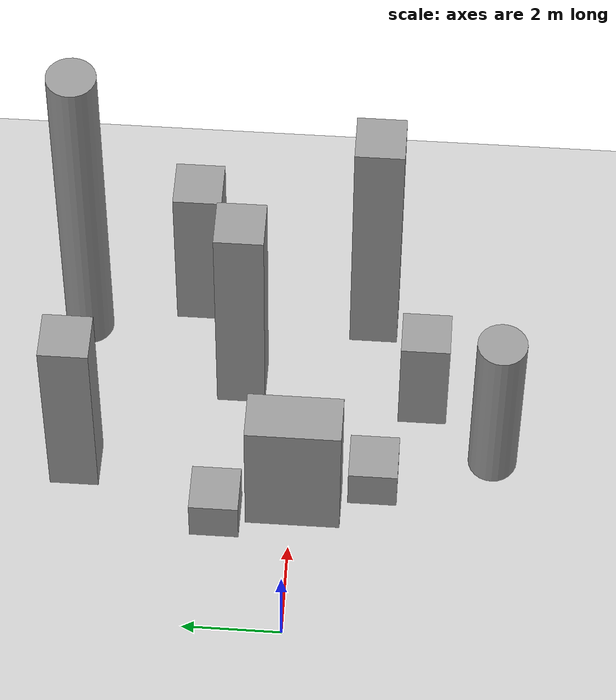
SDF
<sdf version="1.6">
 <world name="default">
  <light name="sun" type="directional">
   <pose>0 0 10 0 -0 0</pose>
   <diffuse>0.8 0.8 0.8 1</diffuse>
   <specular>0.2 0.2 0.2 1</specular>
   <attenuation>
    <range>1000</range>
    <constant>0.9</constant>
    <linear>0.01</linear>
    <quadratic>0.001</quadratic>
   </attenuation>
   <direction>-0.5 0.1 -0.9</direction>
  </light>
  <model name="ground_plane">
   <static>1</static>
   <link name="link">
    <collision name="collision">
     <geometry><plane><normal>0 0 1</normal><size>100 100</size></plane></geometry>
     <surface><friction><ode><mu>100</mu><mu2>50</mu2></ode></friction></surface>
    </collision>
    <visual name="visual">
     <cast_shadows>0</cast_shadows>
     <geometry><plane><normal>0 0 1</normal><size>100 100</size></plane></geometry>
     <material>
      <script><uri>file://media/materials/scripts/gazebo.material</uri><name>Gazebo/Grey</name></script>
     </material>
    </visual>
   </link>
  </model>
  <gravity>0 0 -9.8</gravity>
  <magnetic_field>6e-06 2.3e-05 -4.2e-05</magnetic_field>
  <atmosphere type="adiabatic"/>
  <physics name="default_physics" default="0" type="ode">
   <max_step_size>0.001</max_step_size>
   <real_time_factor>1</real_time_factor>
   <real_time_update_rate>1000</real_time_update_rate>
  </physics>
  <scene><ambient>0.4 0.4 0.4 1</ambient><background>0.7 0.7 0.7 1</background><shadows>1</shadows></scene>
  <spherical_coordinates>
   <surface_model>EARTH_WGS84</surface_model>
   <latitude_deg>0</latitude_deg>
   <longitude_deg>0</longitude_deg>
   <elevation>0</elevation>
   <heading_deg>0</heading_deg>
  </spherical_coordinates>
  <model name="unit_box">
   <pose>3.04685 -0.045624 1.57784 0 0 -0.000107</pose>
   <link name="link">
    <inertial>
     <mass>1</mass>
     <inertia>
      <ixx>0.166667</ixx>
      <ixy>0</ixy>
      <ixz>0</ixz>
      <iyy>0.166667</iyy>
      <iyz>0</iyz>
      <izz>0.166667</izz>
     </inertia>
    </inertial>
    <collision name="collision"><geometry><box><size>1 1.92006 3.15568</size></box></geometry></collision>
    <visual name="visual">
     <geometry><box><size>1 1.92006 3.15568</size></box></geometry>
     <material>
      <script><name>Gazebo/Grey</name><uri>file://media/materials/scripts/gazebo.material</uri></script>
     </material>
    </visual>
   </link>
  </model>
  <model name="unit_box_0">
   <pose>2.68044 1.52869 0.5 0 -0 0</pose>
   <link name="link">
    <inertial>
     <mass>1</mass>
     <inertia>
      <ixx>0.166667</ixx>
      <ixy>0</ixy>
      <ixz>0</ixz>
      <iyy>0.166667</iyy>
      <iyz>0</iyz>
      <izz>0.166667</izz>
     </inertia>
    </inertial>
    <collision name="collision"><geometry><box><size>1 1 1</size></box></geometry></collision>
    <visual name="visual">
     <geometry><box><size>1 1 1</size></box></geometry>
     <material>
      <script><name>Gazebo/Grey</name><uri>file://media/materials/scripts/gazebo.material</uri></script>
     </material>
    </visual>
   </link>
  </model>
  <model name="unit_box_1">
   <pose>3.66565 -1.63738 0.5 0 -0 0</pose>
   <link name="link">
    <inertial>
     <mass>1</mass>
     <inertia>
      <ixx>0.166667</ixx>
      <ixy>0</ixy>
      <ixz>0</ixz>
      <iyy>0.166667</iyy>
      <iyz>0</iyz>
      <izz>0.166667</izz>
     </inertia>
    </inertial>
    <collision name="collision"><geometry><box><size>1 1 1</size></box></geometry></collision>
    <visual name="visual">
     <geometry><box><size>1 1 1</size></box></geometry>
     <material>
      <script><name>Gazebo/Grey</name><uri>file://media/materials/scripts/gazebo.material</uri></script>
     </material>
    </visual>
   </link>
  </model>
  <model name="unit_box_2">
   <pose>5.73098 -2.56388 1.25872 0 -0 0.000177</pose>
   <link name="link">
    <inertial>
     <mass>1</mass>
     <inertia>
      <ixx>0.166667</ixx>
      <ixy>0</ixy>
      <ixz>0</ixz>
      <iyy>0.166667</iyy>
      <iyz>0</iyz>
      <izz>0.166667</izz>
     </inertia>
    </inertial>
    <collision name="collision"><geometry><box><size>0.95204 1 2.51743</size></box></geometry></collision>
    <visual name="visual">
     <geometry><box><size>0.95204 1 2.51743</size></box></geometry>
     <material>
      <script><name>Gazebo/Grey</name><uri>file://media/materials/scripts/gazebo.material</uri></script>
     </material>
    </visual>
   </link>
  </model>
  <spherical_coordinates>
   <surface_model>EARTH_WGS84</surface_model>
   <latitude_deg>47.3667</latitude_deg>
   <longitude_deg>8.55</longitude_deg>
   <elevation>500</elevation>
   <heading_deg>0</heading_deg>
  </spherical_coordinates>
  <physics name="default_physics" default="0" type="ode">
   <ode>
    <solver>
     <type>quick</type>
     <iters>1000</iters>
     <sor>1.3</sor>
     <use_dynamic_moi_rescaling>0</use_dynamic_moi_rescaling>
    </solver>
    <constraints>
     <cfm>0</cfm>
     <erp>0.2</erp>
     <contact_max_correcting_vel>100</contact_max_correcting_vel>
     <contact_surface_layer>0.001</contact_surface_layer>
    </constraints>
   </ode>
   <max_step_size>0.01</max_step_size>
   <real_time_factor>1</real_time_factor>
   <real_time_update_rate>100</real_time_update_rate>
  </physics>
  <model name="unit_box_3">
   <pose>6.05104 1.22881 2.69434 0 -0 0</pose>
   <link name="link">
    <inertial>
     <mass>1</mass>
     <inertia>
      <ixx>0.166667</ixx>
      <ixy>0</ixy>
      <ixz>0</ixz>
      <iyy>0.166667</iyy>
      <iyz>0</iyz>
      <izz>0.166667</izz>
     </inertia>
    </inertial>
    <collision name="collision"><geometry><box><size>1 1 5.38867</size></box></geometry></collision>
    <visual name="visual">
     <geometry><box><size>1 1 5.38867</size></box></geometry>
     <material>
      <script><name>Gazebo/Grey</name><uri>file://media/materials/scripts/gazebo.material</uri></script>
     </material>
    </visual>
   </link>
  </model>
  <model name="unit_box_4">
   <pose>7.78529 -1.44394 3.07323 0 -0 0</pose>
   <link name="link">
    <inertial>
     <mass>1</mass>
     <inertia>
      <ixx>0.166667</ixx>
      <ixy>0</ixy>
      <ixz>0</ixz>
      <iyy>0.166667</iyy>
      <iyz>0</iyz>
      <izz>0.166667</izz>
     </inertia>
    </inertial>
    <collision name="collision"><geometry><box><size>1 1 6.14644</size></box></geometry></collision>
    <visual name="visual">
     <geometry><box><size>1 1 6.14644</size></box></geometry>
     <material>
      <script><name>Gazebo/Grey</name><uri>file://media/materials/scripts/gazebo.material</uri></script>
     </material>
    </visual>
   </link>
  </model>
  <model name="unit_box_5">
   <pose>8.14696 2.25114 1.96781 0 -0 0</pose>
   <link name="link">
    <inertial>
     <mass>1</mass>
     <inertia>
      <ixx>0.166667</ixx>
      <ixy>0</ixy>
      <ixz>0</ixz>
      <iyy>0.166667</iyy>
      <iyz>0</iyz>
      <izz>0.166667</izz>
     </inertia>
    </inertial>
    <collision name="collision"><geometry><box><size>1 1 3.93562</size></box></geometry></collision>
    <visual name="visual">
     <geometry><box><size>1 1 3.93562</size></box></geometry>
     <material>
      <script><name>Gazebo/Grey</name><uri>file://media/materials/scripts/gazebo.material</uri></script>
     </material>
    </visual>
   </link>
  </model>
  <model name="unit_cylinder">
   <pose>4.39388 -4.06109 2.05638 0 -0 0</pose>
   <link name="link">
    <inertial>
     <mass>1</mass>
     <inertia><ixx>0.145833</ixx><ixy>0</ixy><ixz>0</ixz><iyy>0.145833</iyy><iyz>0</iyz><izz>0.125</izz></inertia>
    </inertial>
    <collision name="collision">
     <geometry><cylinder><radius>0.5</radius><length>4.11453</length></cylinder></geometry>
    </collision>
    <visual name="visual">
     <geometry><cylinder><radius>0.5</radius><length>4.11453</length></cylinder></geometry>
     <material>
      <script><name>Gazebo/Grey</name><uri>file://media/materials/scripts/gazebo.material</uri></script>
     </material>
    </visual>
   </link>
  </model>
  <model name="unit_box_6">
   <pose>3.74713 4.49517 2.23962 0 -0 0</pose>
   <link name="link">
    <inertial>
     <mass>1</mass>
     <inertia>
      <ixx>0.166667</ixx>
      <ixy>0</ixy>
      <ixz>0</ixz>
      <iyy>0.166667</iyy>
      <iyz>0</iyz>
      <izz>0.166667</izz>
     </inertia>
    </inertial>
    <collision name="collision"><geometry><box><size>1 1 4.47924</size></box></geometry></collision>
    <visual name="visual">
     <geometry><box><size>1 1 4.47924</size></box></geometry>
     <material>
      <script><name>Gazebo/Grey</name><uri>file://media/materials/scripts/gazebo.material</uri></script>
     </material>
    </visual>
   </link>
  </model>
  <model name="unit_cylinder_0">
   <pose>7.32339 4.57664 4.0237 0 -0 5e-06</pose>
   <link name="link">
    <inertial>
     <mass>1</mass>
     <inertia><ixx>0.145833</ixx><ixy>0</ixy><ixz>0</ixz><iyy>0.145833</iyy><iyz>0</iyz><izz>0.125</izz></inertia>
    </inertial>
    <collision name="collision">
     <geometry><cylinder><radius>0.5</radius><length>8.04915</length></cylinder></geometry>
    </collision>
    <visual name="visual">
     <geometry><cylinder><radius>0.5</radius><length>8.04915</length></cylinder></geometry>
     <material>
      <script><name>Gazebo/Grey</name><uri>file://media/materials/scripts/gazebo.material</uri></script>
     </material>
    </visual>
   </link>
  </model>
  <plugin name="ros_interface_plugin" filename="librotors_gazebo_ros_interface_plugin.so"/>
 </world>
</sdf>
